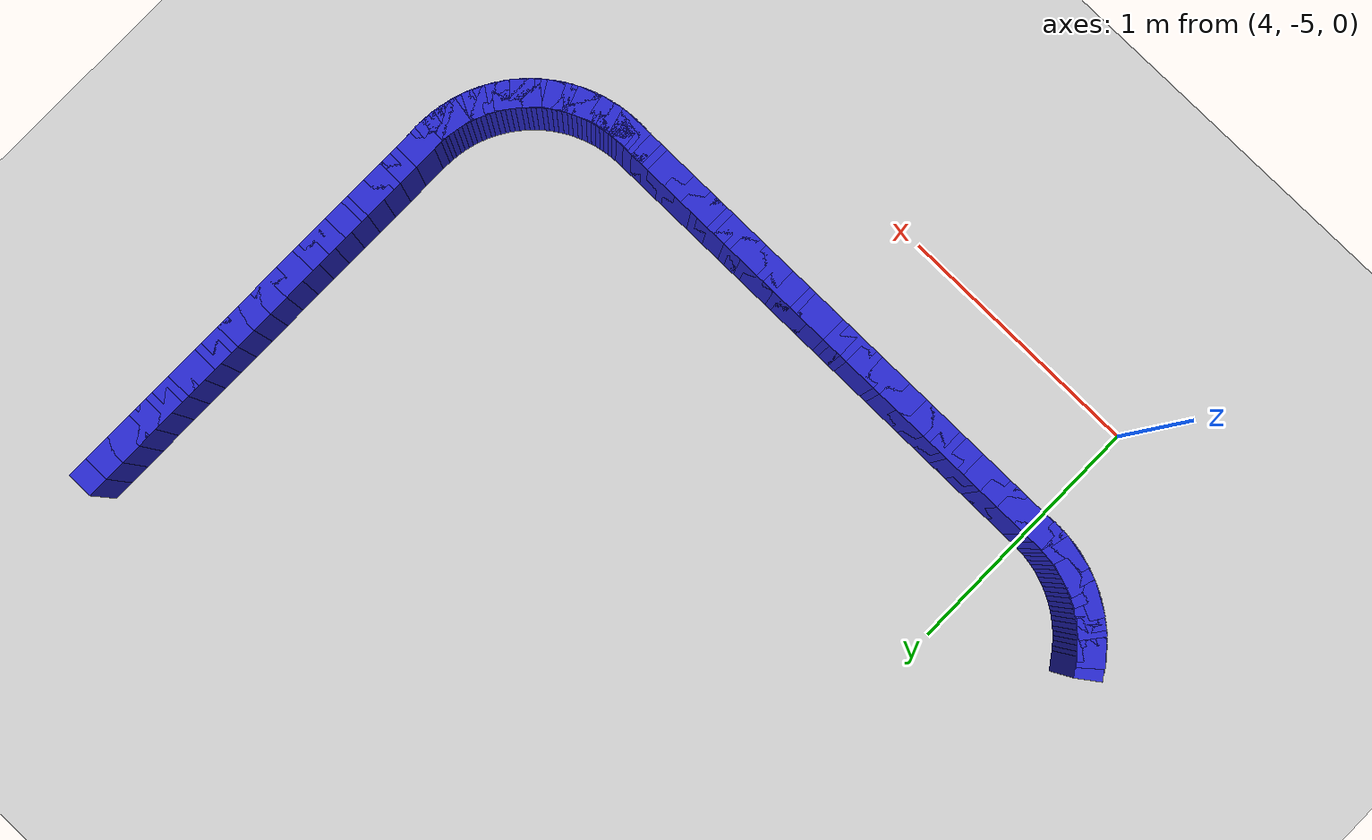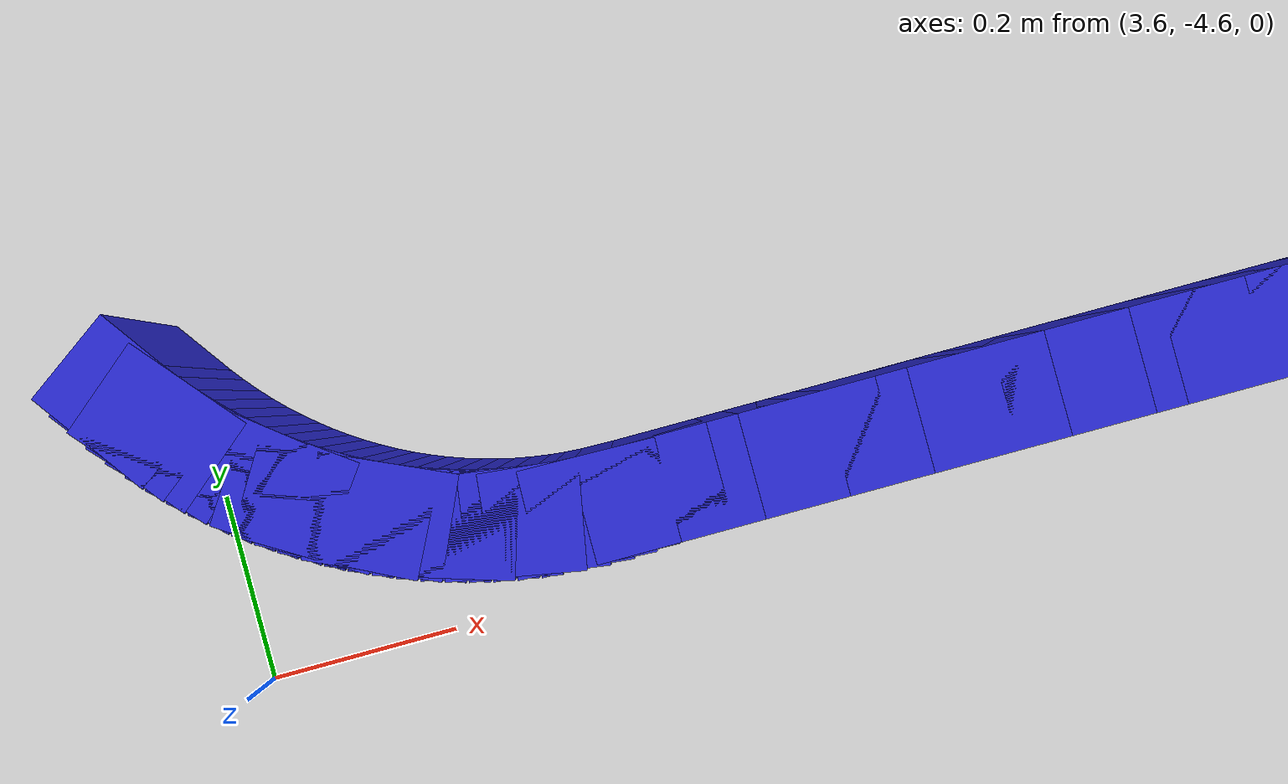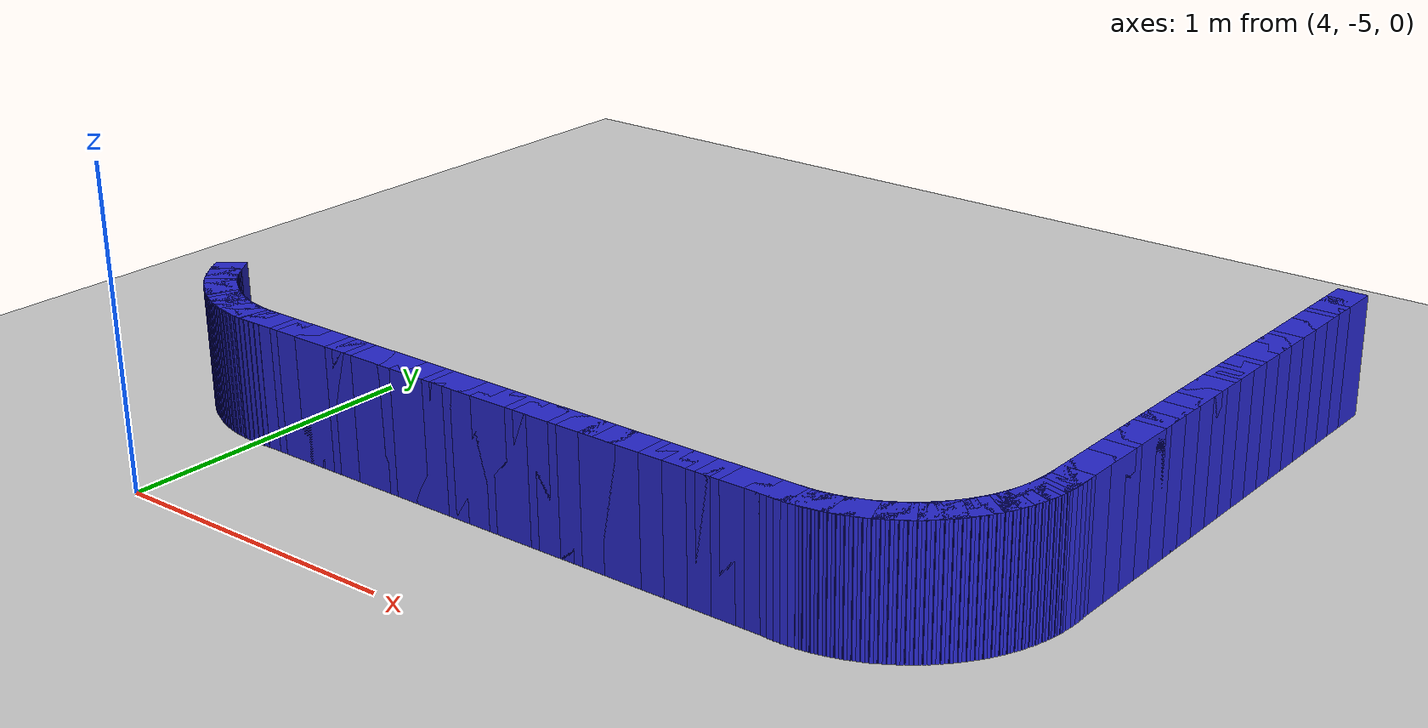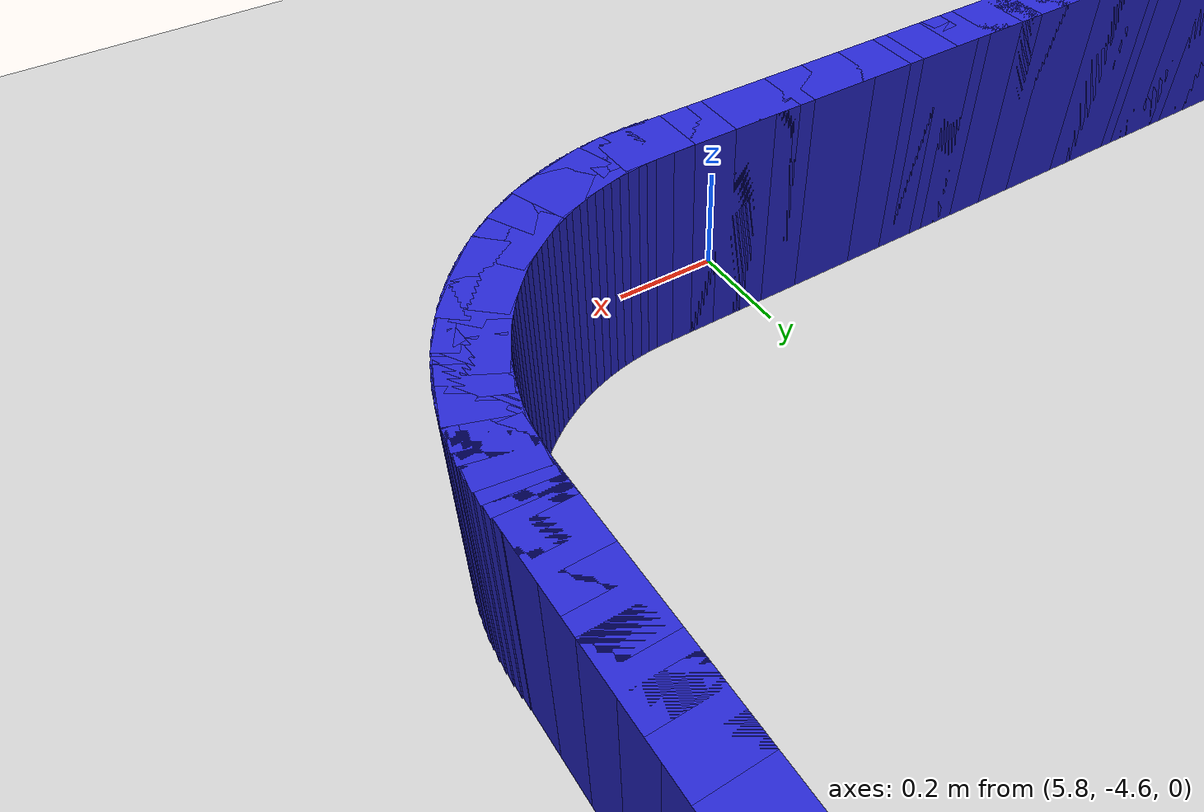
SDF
<sdf version="1.6">
 <world name="new_race_track">
  <include><uri>model://ground_plane</uri></include>
  <include><uri>model://sun</uri></include>
  <model name="iw_308">
   <static>true</static>
   <pose>3.5946 -4.2920 0.200 0 0 -0.9465</pose>
   <link name="l">
    <collision name="c"><geometry><box><size>0.1305 0.1 0.4</size></box></geometry></collision>
    <visual name="v">
     <geometry><box><size>0.1305 0.1 0.4</size></box></geometry>
     <material><ambient>0.15 0.15 0.8 1</ambient><diffuse>0.15 0.15 0.8 1</diffuse></material>
    </visual>
   </link>
  </model>
  <model name="iw_309">
   <static>true</static>
   <pose>3.6067 -4.3081 0.200 0 0 -0.9062</pose>
   <link name="l">
    <collision name="c"><geometry><box><size>0.1305 0.1 0.4</size></box></geometry></collision>
    <visual name="v">
     <geometry><box><size>0.1305 0.1 0.4</size></box></geometry>
     <material><ambient>0.15 0.15 0.8 1</ambient><diffuse>0.15 0.15 0.8 1</diffuse></material>
    </visual>
   </link>
  </model>
  <model name="iw_310">
   <static>true</static>
   <pose>3.6195 -4.3237 0.200 0 0 -0.8660</pose>
   <link name="l">
    <collision name="c"><geometry><box><size>0.1305 0.1 0.4</size></box></geometry></collision>
    <visual name="v">
     <geometry><box><size>0.1305 0.1 0.4</size></box></geometry>
     <material><ambient>0.15 0.15 0.8 1</ambient><diffuse>0.15 0.15 0.8 1</diffuse></material>
    </visual>
   </link>
  </model>
  <model name="iw_311">
   <static>true</static>
   <pose>3.6328 -4.3388 0.200 0 0 -0.8257</pose>
   <link name="l">
    <collision name="c"><geometry><box><size>0.1305 0.1 0.4</size></box></geometry></collision>
    <visual name="v">
     <geometry><box><size>0.1305 0.1 0.4</size></box></geometry>
     <material><ambient>0.15 0.15 0.8 1</ambient><diffuse>0.15 0.15 0.8 1</diffuse></material>
    </visual>
   </link>
  </model>
  <model name="iw_312">
   <static>true</static>
   <pose>3.6467 -4.3533 0.200 0 0 -0.7854</pose>
   <link name="l">
    <collision name="c"><geometry><box><size>0.1305 0.1 0.4</size></box></geometry></collision>
    <visual name="v">
     <geometry><box><size>0.1305 0.1 0.4</size></box></geometry>
     <material><ambient>0.15 0.15 0.8 1</ambient><diffuse>0.15 0.15 0.8 1</diffuse></material>
    </visual>
   </link>
  </model>
  <model name="iw_313">
   <static>true</static>
   <pose>3.6612 -4.3672 0.200 0 0 -0.7451</pose>
   <link name="l">
    <collision name="c"><geometry><box><size>0.1305 0.1 0.4</size></box></geometry></collision>
    <visual name="v">
     <geometry><box><size>0.1305 0.1 0.4</size></box></geometry>
     <material><ambient>0.15 0.15 0.8 1</ambient><diffuse>0.15 0.15 0.8 1</diffuse></material>
    </visual>
   </link>
  </model>
  <model name="iw_314">
   <static>true</static>
   <pose>3.6763 -4.3805 0.200 0 0 -0.7048</pose>
   <link name="l">
    <collision name="c"><geometry><box><size>0.1305 0.1 0.4</size></box></geometry></collision>
    <visual name="v">
     <geometry><box><size>0.1305 0.1 0.4</size></box></geometry>
     <material><ambient>0.15 0.15 0.8 1</ambient><diffuse>0.15 0.15 0.8 1</diffuse></material>
    </visual>
   </link>
  </model>
  <model name="iw_315">
   <static>true</static>
   <pose>3.6919 -4.3933 0.200 0 0 -0.6646</pose>
   <link name="l">
    <collision name="c"><geometry><box><size>0.1305 0.1 0.4</size></box></geometry></collision>
    <visual name="v">
     <geometry><box><size>0.1305 0.1 0.4</size></box></geometry>
     <material><ambient>0.15 0.15 0.8 1</ambient><diffuse>0.15 0.15 0.8 1</diffuse></material>
    </visual>
   </link>
  </model>
  <model name="iw_316">
   <static>true</static>
   <pose>3.7080 -4.4054 0.200 0 0 -0.6243</pose>
   <link name="l">
    <collision name="c"><geometry><box><size>0.1305 0.1 0.4</size></box></geometry></collision>
    <visual name="v">
     <geometry><box><size>0.1305 0.1 0.4</size></box></geometry>
     <material><ambient>0.15 0.15 0.8 1</ambient><diffuse>0.15 0.15 0.8 1</diffuse></material>
    </visual>
   </link>
  </model>
  <model name="iw_317">
   <static>true</static>
   <pose>3.7245 -4.4168 0.200 0 0 -0.5840</pose>
   <link name="l">
    <collision name="c"><geometry><box><size>0.1305 0.1 0.4</size></box></geometry></collision>
    <visual name="v">
     <geometry><box><size>0.1305 0.1 0.4</size></box></geometry>
     <material><ambient>0.15 0.15 0.8 1</ambient><diffuse>0.15 0.15 0.8 1</diffuse></material>
    </visual>
   </link>
  </model>
  <model name="iw_318">
   <static>true</static>
   <pose>3.7415 -4.4275 0.200 0 0 -0.5437</pose>
   <link name="l">
    <collision name="c"><geometry><box><size>0.1305 0.1 0.4</size></box></geometry></collision>
    <visual name="v">
     <geometry><box><size>0.1305 0.1 0.4</size></box></geometry>
     <material><ambient>0.15 0.15 0.8 1</ambient><diffuse>0.15 0.15 0.8 1</diffuse></material>
    </visual>
   </link>
  </model>
  <model name="iw_319">
   <static>true</static>
   <pose>3.7590 -4.4376 0.200 0 0 -0.5035</pose>
   <link name="l">
    <collision name="c"><geometry><box><size>0.1305 0.1 0.4</size></box></geometry></collision>
    <visual name="v">
     <geometry><box><size>0.1305 0.1 0.4</size></box></geometry>
     <material><ambient>0.15 0.15 0.8 1</ambient><diffuse>0.15 0.15 0.8 1</diffuse></material>
    </visual>
   </link>
  </model>
  <model name="iw_320">
   <static>true</static>
   <pose>3.7768 -4.4470 0.200 0 0 -0.4632</pose>
   <link name="l">
    <collision name="c"><geometry><box><size>0.1305 0.1 0.4</size></box></geometry></collision>
    <visual name="v">
     <geometry><box><size>0.1305 0.1 0.4</size></box></geometry>
     <material><ambient>0.15 0.15 0.8 1</ambient><diffuse>0.15 0.15 0.8 1</diffuse></material>
    </visual>
   </link>
  </model>
  <model name="iw_321">
   <static>true</static>
   <pose>3.7950 -4.4556 0.200 0 0 -0.4229</pose>
   <link name="l">
    <collision name="c"><geometry><box><size>0.1305 0.1 0.4</size></box></geometry></collision>
    <visual name="v">
     <geometry><box><size>0.1305 0.1 0.4</size></box></geometry>
     <material><ambient>0.15 0.15 0.8 1</ambient><diffuse>0.15 0.15 0.8 1</diffuse></material>
    </visual>
   </link>
  </model>
  <model name="iw_322">
   <static>true</static>
   <pose>3.8135 -4.4635 0.200 0 0 -0.3826</pose>
   <link name="l">
    <collision name="c"><geometry><box><size>0.1305 0.1 0.4</size></box></geometry></collision>
    <visual name="v">
     <geometry><box><size>0.1305 0.1 0.4</size></box></geometry>
     <material><ambient>0.15 0.15 0.8 1</ambient><diffuse>0.15 0.15 0.8 1</diffuse></material>
    </visual>
   </link>
  </model>
  <model name="iw_323">
   <static>true</static>
   <pose>3.8323 -4.4706 0.200 0 0 -0.3424</pose>
   <link name="l">
    <collision name="c"><geometry><box><size>0.1305 0.1 0.4</size></box></geometry></collision>
    <visual name="v">
     <geometry><box><size>0.1305 0.1 0.4</size></box></geometry>
     <material><ambient>0.15 0.15 0.8 1</ambient><diffuse>0.15 0.15 0.8 1</diffuse></material>
    </visual>
   </link>
  </model>
  <model name="iw_324">
   <static>true</static>
   <pose>3.8514 -4.4770 0.200 0 0 -0.3021</pose>
   <link name="l">
    <collision name="c"><geometry><box><size>0.1305 0.1 0.4</size></box></geometry></collision>
    <visual name="v">
     <geometry><box><size>0.1305 0.1 0.4</size></box></geometry>
     <material><ambient>0.15 0.15 0.8 1</ambient><diffuse>0.15 0.15 0.8 1</diffuse></material>
    </visual>
   </link>
  </model>
  <model name="iw_325">
   <static>true</static>
   <pose>3.8707 -4.4826 0.200 0 0 -0.2618</pose>
   <link name="l">
    <collision name="c"><geometry><box><size>0.1305 0.1 0.4</size></box></geometry></collision>
    <visual name="v">
     <geometry><box><size>0.1305 0.1 0.4</size></box></geometry>
     <material><ambient>0.15 0.15 0.8 1</ambient><diffuse>0.15 0.15 0.8 1</diffuse></material>
    </visual>
   </link>
  </model>
  <model name="iw_326">
   <static>true</static>
   <pose>3.8902 -4.4874 0.200 0 0 -0.2215</pose>
   <link name="l">
    <collision name="c"><geometry><box><size>0.1305 0.1 0.4</size></box></geometry></collision>
    <visual name="v">
     <geometry><box><size>0.1305 0.1 0.4</size></box></geometry>
     <material><ambient>0.15 0.15 0.8 1</ambient><diffuse>0.15 0.15 0.8 1</diffuse></material>
    </visual>
   </link>
  </model>
  <model name="iw_327">
   <static>true</static>
   <pose>3.9099 -4.4914 0.200 0 0 -0.1812</pose>
   <link name="l">
    <collision name="c"><geometry><box><size>0.1305 0.1 0.4</size></box></geometry></collision>
    <visual name="v">
     <geometry><box><size>0.1305 0.1 0.4</size></box></geometry>
     <material><ambient>0.15 0.15 0.8 1</ambient><diffuse>0.15 0.15 0.8 1</diffuse></material>
    </visual>
   </link>
  </model>
  <model name="iw_328">
   <static>true</static>
   <pose>3.9298 -4.4946 0.200 0 0 -0.1410</pose>
   <link name="l">
    <collision name="c"><geometry><box><size>0.1305 0.1 0.4</size></box></geometry></collision>
    <visual name="v">
     <geometry><box><size>0.1305 0.1 0.4</size></box></geometry>
     <material><ambient>0.15 0.15 0.8 1</ambient><diffuse>0.15 0.15 0.8 1</diffuse></material>
    </visual>
   </link>
  </model>
  <model name="iw_329">
   <static>true</static>
   <pose>3.9498 -4.4971 0.200 0 0 -0.1007</pose>
   <link name="l">
    <collision name="c"><geometry><box><size>0.1305 0.1 0.4</size></box></geometry></collision>
    <visual name="v">
     <geometry><box><size>0.1305 0.1 0.4</size></box></geometry>
     <material><ambient>0.15 0.15 0.8 1</ambient><diffuse>0.15 0.15 0.8 1</diffuse></material>
    </visual>
   </link>
  </model>
  <model name="iw_330">
   <static>true</static>
   <pose>3.9698 -4.4987 0.200 0 0 -0.0604</pose>
   <link name="l">
    <collision name="c"><geometry><box><size>0.1305 0.1 0.4</size></box></geometry></collision>
    <visual name="v">
     <geometry><box><size>0.1305 0.1 0.4</size></box></geometry>
     <material><ambient>0.15 0.15 0.8 1</ambient><diffuse>0.15 0.15 0.8 1</diffuse></material>
    </visual>
   </link>
  </model>
  <model name="iw_331">
   <static>true</static>
   <pose>3.9899 -4.4995 0.200 0 0 -0.0201</pose>
   <link name="l">
    <collision name="c"><geometry><box><size>0.1305 0.1 0.4</size></box></geometry></collision>
    <visual name="v">
     <geometry><box><size>0.1305 0.1 0.4</size></box></geometry>
     <material><ambient>0.15 0.15 0.8 1</ambient><diffuse>0.15 0.15 0.8 1</diffuse></material>
    </visual>
   </link>
  </model>
  <model name="iw_332">
   <static>true</static>
   <pose>4.0400 -4.5000 0.200 0 0 0.0000</pose>
   <link name="l">
    <collision name="c"><geometry><box><size>0.1300 0.1 0.4</size></box></geometry></collision>
    <visual name="v">
     <geometry><box><size>0.1300 0.1 0.4</size></box></geometry>
     <material><ambient>0.15 0.15 0.8 1</ambient><diffuse>0.15 0.15 0.8 1</diffuse></material>
    </visual>
   </link>
  </model>
  <model name="iw_333">
   <static>true</static>
   <pose>4.1200 -4.5000 0.200 0 0 0.0000</pose>
   <link name="l">
    <collision name="c"><geometry><box><size>0.1300 0.1 0.4</size></box></geometry></collision>
    <visual name="v">
     <geometry><box><size>0.1300 0.1 0.4</size></box></geometry>
     <material><ambient>0.15 0.15 0.8 1</ambient><diffuse>0.15 0.15 0.8 1</diffuse></material>
    </visual>
   </link>
  </model>
  <model name="iw_334">
   <static>true</static>
   <pose>4.2000 -4.5000 0.200 0 0 0.0000</pose>
   <link name="l">
    <collision name="c"><geometry><box><size>0.1300 0.1 0.4</size></box></geometry></collision>
    <visual name="v">
     <geometry><box><size>0.1300 0.1 0.4</size></box></geometry>
     <material><ambient>0.15 0.15 0.8 1</ambient><diffuse>0.15 0.15 0.8 1</diffuse></material>
    </visual>
   </link>
  </model>
  <model name="iw_335">
   <static>true</static>
   <pose>4.2800 -4.5000 0.200 0 0 0.0000</pose>
   <link name="l">
    <collision name="c"><geometry><box><size>0.1300 0.1 0.4</size></box></geometry></collision>
    <visual name="v">
     <geometry><box><size>0.1300 0.1 0.4</size></box></geometry>
     <material><ambient>0.15 0.15 0.8 1</ambient><diffuse>0.15 0.15 0.8 1</diffuse></material>
    </visual>
   </link>
  </model>
  <model name="iw_336">
   <static>true</static>
   <pose>4.3600 -4.5000 0.200 0 0 0.0000</pose>
   <link name="l">
    <collision name="c"><geometry><box><size>0.1300 0.1 0.4</size></box></geometry></collision>
    <visual name="v">
     <geometry><box><size>0.1300 0.1 0.4</size></box></geometry>
     <material><ambient>0.15 0.15 0.8 1</ambient><diffuse>0.15 0.15 0.8 1</diffuse></material>
    </visual>
   </link>
  </model>
  <model name="iw_337">
   <static>true</static>
   <pose>4.4400 -4.5000 0.200 0 0 0.0000</pose>
   <link name="l">
    <collision name="c"><geometry><box><size>0.1300 0.1 0.4</size></box></geometry></collision>
    <visual name="v">
     <geometry><box><size>0.1300 0.1 0.4</size></box></geometry>
     <material><ambient>0.15 0.15 0.8 1</ambient><diffuse>0.15 0.15 0.8 1</diffuse></material>
    </visual>
   </link>
  </model>
  <model name="iw_338">
   <static>true</static>
   <pose>4.5200 -4.5000 0.200 0 0 0.0000</pose>
   <link name="l">
    <collision name="c"><geometry><box><size>0.1300 0.1 0.4</size></box></geometry></collision>
    <visual name="v">
     <geometry><box><size>0.1300 0.1 0.4</size></box></geometry>
     <material><ambient>0.15 0.15 0.8 1</ambient><diffuse>0.15 0.15 0.8 1</diffuse></material>
    </visual>
   </link>
  </model>
  <model name="iw_339">
   <static>true</static>
   <pose>4.6000 -4.5000 0.200 0 0 0.0000</pose>
   <link name="l">
    <collision name="c"><geometry><box><size>0.1300 0.1 0.4</size></box></geometry></collision>
    <visual name="v">
     <geometry><box><size>0.1300 0.1 0.4</size></box></geometry>
     <material><ambient>0.15 0.15 0.8 1</ambient><diffuse>0.15 0.15 0.8 1</diffuse></material>
    </visual>
   </link>
  </model>
  <model name="iw_340">
   <static>true</static>
   <pose>4.6800 -4.5000 0.200 0 0 0.0000</pose>
   <link name="l">
    <collision name="c"><geometry><box><size>0.1300 0.1 0.4</size></box></geometry></collision>
    <visual name="v">
     <geometry><box><size>0.1300 0.1 0.4</size></box></geometry>
     <material><ambient>0.15 0.15 0.8 1</ambient><diffuse>0.15 0.15 0.8 1</diffuse></material>
    </visual>
   </link>
  </model>
  <model name="iw_341">
   <static>true</static>
   <pose>4.7600 -4.5000 0.200 0 0 0.0000</pose>
   <link name="l">
    <collision name="c"><geometry><box><size>0.1300 0.1 0.4</size></box></geometry></collision>
    <visual name="v">
     <geometry><box><size>0.1300 0.1 0.4</size></box></geometry>
     <material><ambient>0.15 0.15 0.8 1</ambient><diffuse>0.15 0.15 0.8 1</diffuse></material>
    </visual>
   </link>
  </model>
  <model name="iw_342">
   <static>true</static>
   <pose>4.8400 -4.5000 0.200 0 0 0.0000</pose>
   <link name="l">
    <collision name="c"><geometry><box><size>0.1300 0.1 0.4</size></box></geometry></collision>
    <visual name="v">
     <geometry><box><size>0.1300 0.1 0.4</size></box></geometry>
     <material><ambient>0.15 0.15 0.8 1</ambient><diffuse>0.15 0.15 0.8 1</diffuse></material>
    </visual>
   </link>
  </model>
  <model name="iw_343">
   <static>true</static>
   <pose>4.9200 -4.5000 0.200 0 0 0.0000</pose>
   <link name="l">
    <collision name="c"><geometry><box><size>0.1300 0.1 0.4</size></box></geometry></collision>
    <visual name="v">
     <geometry><box><size>0.1300 0.1 0.4</size></box></geometry>
     <material><ambient>0.15 0.15 0.8 1</ambient><diffuse>0.15 0.15 0.8 1</diffuse></material>
    </visual>
   </link>
  </model>
  <model name="iw_344">
   <static>true</static>
   <pose>5.0000 -4.5000 0.200 0 0 0.0000</pose>
   <link name="l">
    <collision name="c"><geometry><box><size>0.1300 0.1 0.4</size></box></geometry></collision>
    <visual name="v">
     <geometry><box><size>0.1300 0.1 0.4</size></box></geometry>
     <material><ambient>0.15 0.15 0.8 1</ambient><diffuse>0.15 0.15 0.8 1</diffuse></material>
    </visual>
   </link>
  </model>
  <model name="iw_345">
   <static>true</static>
   <pose>5.0800 -4.5000 0.200 0 0 0.0000</pose>
   <link name="l">
    <collision name="c"><geometry><box><size>0.1300 0.1 0.4</size></box></geometry></collision>
    <visual name="v">
     <geometry><box><size>0.1300 0.1 0.4</size></box></geometry>
     <material><ambient>0.15 0.15 0.8 1</ambient><diffuse>0.15 0.15 0.8 1</diffuse></material>
    </visual>
   </link>
  </model>
  <model name="iw_346">
   <static>true</static>
   <pose>5.1600 -4.5000 0.200 0 0 0.0000</pose>
   <link name="l">
    <collision name="c"><geometry><box><size>0.1300 0.1 0.4</size></box></geometry></collision>
    <visual name="v">
     <geometry><box><size>0.1300 0.1 0.4</size></box></geometry>
     <material><ambient>0.15 0.15 0.8 1</ambient><diffuse>0.15 0.15 0.8 1</diffuse></material>
    </visual>
   </link>
  </model>
  <model name="iw_347">
   <static>true</static>
   <pose>5.2400 -4.5000 0.200 0 0 0.0000</pose>
   <link name="l">
    <collision name="c"><geometry><box><size>0.1300 0.1 0.4</size></box></geometry></collision>
    <visual name="v">
     <geometry><box><size>0.1300 0.1 0.4</size></box></geometry>
     <material><ambient>0.15 0.15 0.8 1</ambient><diffuse>0.15 0.15 0.8 1</diffuse></material>
    </visual>
   </link>
  </model>
  <model name="iw_348">
   <static>true</static>
   <pose>5.3200 -4.5000 0.200 0 0 0.0000</pose>
   <link name="l">
    <collision name="c"><geometry><box><size>0.1300 0.1 0.4</size></box></geometry></collision>
    <visual name="v">
     <geometry><box><size>0.1300 0.1 0.4</size></box></geometry>
     <material><ambient>0.15 0.15 0.8 1</ambient><diffuse>0.15 0.15 0.8 1</diffuse></material>
    </visual>
   </link>
  </model>
  <model name="iw_349">
   <static>true</static>
   <pose>5.4000 -4.5000 0.200 0 0 0.0000</pose>
   <link name="l">
    <collision name="c"><geometry><box><size>0.1300 0.1 0.4</size></box></geometry></collision>
    <visual name="v">
     <geometry><box><size>0.1300 0.1 0.4</size></box></geometry>
     <material><ambient>0.15 0.15 0.8 1</ambient><diffuse>0.15 0.15 0.8 1</diffuse></material>
    </visual>
   </link>
  </model>
  <model name="iw_350">
   <static>true</static>
   <pose>5.4800 -4.5000 0.200 0 0 0.0000</pose>
   <link name="l">
    <collision name="c"><geometry><box><size>0.1300 0.1 0.4</size></box></geometry></collision>
    <visual name="v">
     <geometry><box><size>0.1300 0.1 0.4</size></box></geometry>
     <material><ambient>0.15 0.15 0.8 1</ambient><diffuse>0.15 0.15 0.8 1</diffuse></material>
    </visual>
   </link>
  </model>
  <model name="iw_351">
   <static>true</static>
   <pose>5.5600 -4.5000 0.200 0 0 0.0000</pose>
   <link name="l">
    <collision name="c"><geometry><box><size>0.1300 0.1 0.4</size></box></geometry></collision>
    <visual name="v">
     <geometry><box><size>0.1300 0.1 0.4</size></box></geometry>
     <material><ambient>0.15 0.15 0.8 1</ambient><diffuse>0.15 0.15 0.8 1</diffuse></material>
    </visual>
   </link>
  </model>
  <model name="iw_352">
   <static>true</static>
   <pose>5.6400 -4.5000 0.200 0 0 0.0000</pose>
   <link name="l">
    <collision name="c"><geometry><box><size>0.1300 0.1 0.4</size></box></geometry></collision>
    <visual name="v">
     <geometry><box><size>0.1300 0.1 0.4</size></box></geometry>
     <material><ambient>0.15 0.15 0.8 1</ambient><diffuse>0.15 0.15 0.8 1</diffuse></material>
    </visual>
   </link>
  </model>
  <model name="iw_353">
   <static>true</static>
   <pose>5.7200 -4.5000 0.200 0 0 0.0000</pose>
   <link name="l">
    <collision name="c"><geometry><box><size>0.1300 0.1 0.4</size></box></geometry></collision>
    <visual name="v">
     <geometry><box><size>0.1300 0.1 0.4</size></box></geometry>
     <material><ambient>0.15 0.15 0.8 1</ambient><diffuse>0.15 0.15 0.8 1</diffuse></material>
    </visual>
   </link>
  </model>
  <model name="iw_354">
   <static>true</static>
   <pose>5.8000 -4.5000 0.200 0 0 0.0000</pose>
   <link name="l">
    <collision name="c"><geometry><box><size>0.1300 0.1 0.4</size></box></geometry></collision>
    <visual name="v">
     <geometry><box><size>0.1300 0.1 0.4</size></box></geometry>
     <material><ambient>0.15 0.15 0.8 1</ambient><diffuse>0.15 0.15 0.8 1</diffuse></material>
    </visual>
   </link>
  </model>
  <model name="iw_355">
   <static>true</static>
   <pose>5.8800 -4.5000 0.200 0 0 0.0000</pose>
   <link name="l">
    <collision name="c"><geometry><box><size>0.1300 0.1 0.4</size></box></geometry></collision>
    <visual name="v">
     <geometry><box><size>0.1300 0.1 0.4</size></box></geometry>
     <material><ambient>0.15 0.15 0.8 1</ambient><diffuse>0.15 0.15 0.8 1</diffuse></material>
    </visual>
   </link>
  </model>
  <model name="iw_356">
   <static>true</static>
   <pose>5.9600 -4.5000 0.200 0 0 0.0000</pose>
   <link name="l">
    <collision name="c"><geometry><box><size>0.1300 0.1 0.4</size></box></geometry></collision>
    <visual name="v">
     <geometry><box><size>0.1300 0.1 0.4</size></box></geometry>
     <material><ambient>0.15 0.15 0.8 1</ambient><diffuse>0.15 0.15 0.8 1</diffuse></material>
    </visual>
   </link>
  </model>
  <model name="iw_357">
   <static>true</static>
   <pose>6.0101 -4.4995 0.200 0 0 0.0201</pose>
   <link name="l">
    <collision name="c"><geometry><box><size>0.1305 0.1 0.4</size></box></geometry></collision>
    <visual name="v">
     <geometry><box><size>0.1305 0.1 0.4</size></box></geometry>
     <material><ambient>0.15 0.15 0.8 1</ambient><diffuse>0.15 0.15 0.8 1</diffuse></material>
    </visual>
   </link>
  </model>
  <model name="iw_358">
   <static>true</static>
   <pose>6.0302 -4.4987 0.200 0 0 0.0604</pose>
   <link name="l">
    <collision name="c"><geometry><box><size>0.1305 0.1 0.4</size></box></geometry></collision>
    <visual name="v">
     <geometry><box><size>0.1305 0.1 0.4</size></box></geometry>
     <material><ambient>0.15 0.15 0.8 1</ambient><diffuse>0.15 0.15 0.8 1</diffuse></material>
    </visual>
   </link>
  </model>
  <model name="iw_359">
   <static>true</static>
   <pose>6.0502 -4.4971 0.200 0 0 0.1007</pose>
   <link name="l">
    <collision name="c"><geometry><box><size>0.1305 0.1 0.4</size></box></geometry></collision>
    <visual name="v">
     <geometry><box><size>0.1305 0.1 0.4</size></box></geometry>
     <material><ambient>0.15 0.15 0.8 1</ambient><diffuse>0.15 0.15 0.8 1</diffuse></material>
    </visual>
   </link>
  </model>
  <model name="iw_360">
   <static>true</static>
   <pose>6.0702 -4.4946 0.200 0 0 0.1410</pose>
   <link name="l">
    <collision name="c"><geometry><box><size>0.1305 0.1 0.4</size></box></geometry></collision>
    <visual name="v">
     <geometry><box><size>0.1305 0.1 0.4</size></box></geometry>
     <material><ambient>0.15 0.15 0.8 1</ambient><diffuse>0.15 0.15 0.8 1</diffuse></material>
    </visual>
   </link>
  </model>
  <model name="iw_361">
   <static>true</static>
   <pose>6.0901 -4.4914 0.200 0 0 0.1812</pose>
   <link name="l">
    <collision name="c"><geometry><box><size>0.1305 0.1 0.4</size></box></geometry></collision>
    <visual name="v">
     <geometry><box><size>0.1305 0.1 0.4</size></box></geometry>
     <material><ambient>0.15 0.15 0.8 1</ambient><diffuse>0.15 0.15 0.8 1</diffuse></material>
    </visual>
   </link>
  </model>
  <model name="iw_362">
   <static>true</static>
   <pose>6.1098 -4.4874 0.200 0 0 0.2215</pose>
   <link name="l">
    <collision name="c"><geometry><box><size>0.1305 0.1 0.4</size></box></geometry></collision>
    <visual name="v">
     <geometry><box><size>0.1305 0.1 0.4</size></box></geometry>
     <material><ambient>0.15 0.15 0.8 1</ambient><diffuse>0.15 0.15 0.8 1</diffuse></material>
    </visual>
   </link>
  </model>
  <model name="iw_363">
   <static>true</static>
   <pose>6.1293 -4.4826 0.200 0 0 0.2618</pose>
   <link name="l">
    <collision name="c"><geometry><box><size>0.1305 0.1 0.4</size></box></geometry></collision>
    <visual name="v">
     <geometry><box><size>0.1305 0.1 0.4</size></box></geometry>
     <material><ambient>0.15 0.15 0.8 1</ambient><diffuse>0.15 0.15 0.8 1</diffuse></material>
    </visual>
   </link>
  </model>
  <model name="iw_364">
   <static>true</static>
   <pose>6.1486 -4.4770 0.200 0 0 0.3021</pose>
   <link name="l">
    <collision name="c"><geometry><box><size>0.1305 0.1 0.4</size></box></geometry></collision>
    <visual name="v">
     <geometry><box><size>0.1305 0.1 0.4</size></box></geometry>
     <material><ambient>0.15 0.15 0.8 1</ambient><diffuse>0.15 0.15 0.8 1</diffuse></material>
    </visual>
   </link>
  </model>
  <model name="iw_365">
   <static>true</static>
   <pose>6.1677 -4.4706 0.200 0 0 0.3424</pose>
   <link name="l">
    <collision name="c"><geometry><box><size>0.1305 0.1 0.4</size></box></geometry></collision>
    <visual name="v">
     <geometry><box><size>0.1305 0.1 0.4</size></box></geometry>
     <material><ambient>0.15 0.15 0.8 1</ambient><diffuse>0.15 0.15 0.8 1</diffuse></material>
    </visual>
   </link>
  </model>
  <model name="iw_366">
   <static>true</static>
   <pose>6.1865 -4.4635 0.200 0 0 0.3826</pose>
   <link name="l">
    <collision name="c"><geometry><box><size>0.1305 0.1 0.4</size></box></geometry></collision>
    <visual name="v">
     <geometry><box><size>0.1305 0.1 0.4</size></box></geometry>
     <material><ambient>0.15 0.15 0.8 1</ambient><diffuse>0.15 0.15 0.8 1</diffuse></material>
    </visual>
   </link>
  </model>
  <model name="iw_367">
   <static>true</static>
   <pose>6.2050 -4.4556 0.200 0 0 0.4229</pose>
   <link name="l">
    <collision name="c"><geometry><box><size>0.1305 0.1 0.4</size></box></geometry></collision>
    <visual name="v">
     <geometry><box><size>0.1305 0.1 0.4</size></box></geometry>
     <material><ambient>0.15 0.15 0.8 1</ambient><diffuse>0.15 0.15 0.8 1</diffuse></material>
    </visual>
   </link>
  </model>
  <model name="iw_368">
   <static>true</static>
   <pose>6.2232 -4.4470 0.200 0 0 0.4632</pose>
   <link name="l">
    <collision name="c"><geometry><box><size>0.1305 0.1 0.4</size></box></geometry></collision>
    <visual name="v">
     <geometry><box><size>0.1305 0.1 0.4</size></box></geometry>
     <material><ambient>0.15 0.15 0.8 1</ambient><diffuse>0.15 0.15 0.8 1</diffuse></material>
    </visual>
   </link>
  </model>
  <model name="iw_369">
   <static>true</static>
   <pose>6.2410 -4.4376 0.200 0 0 0.5035</pose>
   <link name="l">
    <collision name="c"><geometry><box><size>0.1305 0.1 0.4</size></box></geometry></collision>
    <visual name="v">
     <geometry><box><size>0.1305 0.1 0.4</size></box></geometry>
     <material><ambient>0.15 0.15 0.8 1</ambient><diffuse>0.15 0.15 0.8 1</diffuse></material>
    </visual>
   </link>
  </model>
  <model name="iw_370">
   <static>true</static>
   <pose>6.2585 -4.4275 0.200 0 0 0.5437</pose>
   <link name="l">
    <collision name="c"><geometry><box><size>0.1305 0.1 0.4</size></box></geometry></collision>
    <visual name="v">
     <geometry><box><size>0.1305 0.1 0.4</size></box></geometry>
     <material><ambient>0.15 0.15 0.8 1</ambient><diffuse>0.15 0.15 0.8 1</diffuse></material>
    </visual>
   </link>
  </model>
  <model name="iw_371">
   <static>true</static>
   <pose>6.2755 -4.4168 0.200 0 0 0.5840</pose>
   <link name="l">
    <collision name="c"><geometry><box><size>0.1305 0.1 0.4</size></box></geometry></collision>
    <visual name="v">
     <geometry><box><size>0.1305 0.1 0.4</size></box></geometry>
     <material><ambient>0.15 0.15 0.8 1</ambient><diffuse>0.15 0.15 0.8 1</diffuse></material>
    </visual>
   </link>
  </model>
  <model name="iw_372">
   <static>true</static>
   <pose>6.2920 -4.4054 0.200 0 0 0.6243</pose>
   <link name="l">
    <collision name="c"><geometry><box><size>0.1305 0.1 0.4</size></box></geometry></collision>
    <visual name="v">
     <geometry><box><size>0.1305 0.1 0.4</size></box></geometry>
     <material><ambient>0.15 0.15 0.8 1</ambient><diffuse>0.15 0.15 0.8 1</diffuse></material>
    </visual>
   </link>
  </model>
  <model name="iw_373">
   <static>true</static>
   <pose>6.3081 -4.3933 0.200 0 0 0.6646</pose>
   <link name="l">
    <collision name="c"><geometry><box><size>0.1305 0.1 0.4</size></box></geometry></collision>
    <visual name="v">
     <geometry><box><size>0.1305 0.1 0.4</size></box></geometry>
     <material><ambient>0.15 0.15 0.8 1</ambient><diffuse>0.15 0.15 0.8 1</diffuse></material>
    </visual>
   </link>
  </model>
  <model name="iw_374">
   <static>true</static>
   <pose>6.3237 -4.3805 0.200 0 0 0.7048</pose>
   <link name="l">
    <collision name="c"><geometry><box><size>0.1305 0.1 0.4</size></box></geometry></collision>
    <visual name="v">
     <geometry><box><size>0.1305 0.1 0.4</size></box></geometry>
     <material><ambient>0.15 0.15 0.8 1</ambient><diffuse>0.15 0.15 0.8 1</diffuse></material>
    </visual>
   </link>
  </model>
  <model name="iw_375">
   <static>true</static>
   <pose>6.3388 -4.3672 0.200 0 0 0.7451</pose>
   <link name="l">
    <collision name="c"><geometry><box><size>0.1305 0.1 0.4</size></box></geometry></collision>
    <visual name="v">
     <geometry><box><size>0.1305 0.1 0.4</size></box></geometry>
     <material><ambient>0.15 0.15 0.8 1</ambient><diffuse>0.15 0.15 0.8 1</diffuse></material>
    </visual>
   </link>
  </model>
  <model name="iw_376">
   <static>true</static>
   <pose>6.3533 -4.3533 0.200 0 0 0.7854</pose>
   <link name="l">
    <collision name="c"><geometry><box><size>0.1305 0.1 0.4</size></box></geometry></collision>
    <visual name="v">
     <geometry><box><size>0.1305 0.1 0.4</size></box></geometry>
     <material><ambient>0.15 0.15 0.8 1</ambient><diffuse>0.15 0.15 0.8 1</diffuse></material>
    </visual>
   </link>
  </model>
  <model name="iw_377">
   <static>true</static>
   <pose>6.3672 -4.3388 0.200 0 0 0.8257</pose>
   <link name="l">
    <collision name="c"><geometry><box><size>0.1305 0.1 0.4</size></box></geometry></collision>
    <visual name="v">
     <geometry><box><size>0.1305 0.1 0.4</size></box></geometry>
     <material><ambient>0.15 0.15 0.8 1</ambient><diffuse>0.15 0.15 0.8 1</diffuse></material>
    </visual>
   </link>
  </model>
  <model name="iw_378">
   <static>true</static>
   <pose>6.3805 -4.3237 0.200 0 0 0.8660</pose>
   <link name="l">
    <collision name="c"><geometry><box><size>0.1305 0.1 0.4</size></box></geometry></collision>
    <visual name="v">
     <geometry><box><size>0.1305 0.1 0.4</size></box></geometry>
     <material><ambient>0.15 0.15 0.8 1</ambient><diffuse>0.15 0.15 0.8 1</diffuse></material>
    </visual>
   </link>
  </model>
  <model name="iw_379">
   <static>true</static>
   <pose>6.3933 -4.3081 0.200 0 0 0.9062</pose>
   <link name="l">
    <collision name="c"><geometry><box><size>0.1305 0.1 0.4</size></box></geometry></collision>
    <visual name="v">
     <geometry><box><size>0.1305 0.1 0.4</size></box></geometry>
     <material><ambient>0.15 0.15 0.8 1</ambient><diffuse>0.15 0.15 0.8 1</diffuse></material>
    </visual>
   </link>
  </model>
  <model name="iw_380">
   <static>true</static>
   <pose>6.4054 -4.2920 0.200 0 0 0.9465</pose>
   <link name="l">
    <collision name="c"><geometry><box><size>0.1305 0.1 0.4</size></box></geometry></collision>
    <visual name="v">
     <geometry><box><size>0.1305 0.1 0.4</size></box></geometry>
     <material><ambient>0.15 0.15 0.8 1</ambient><diffuse>0.15 0.15 0.8 1</diffuse></material>
    </visual>
   </link>
  </model>
  <model name="iw_381">
   <static>true</static>
   <pose>6.4168 -4.2755 0.200 0 0 0.9868</pose>
   <link name="l">
    <collision name="c"><geometry><box><size>0.1305 0.1 0.4</size></box></geometry></collision>
    <visual name="v">
     <geometry><box><size>0.1305 0.1 0.4</size></box></geometry>
     <material><ambient>0.15 0.15 0.8 1</ambient><diffuse>0.15 0.15 0.8 1</diffuse></material>
    </visual>
   </link>
  </model>
  <model name="iw_382">
   <static>true</static>
   <pose>6.4275 -4.2585 0.200 0 0 1.0271</pose>
   <link name="l">
    <collision name="c"><geometry><box><size>0.1305 0.1 0.4</size></box></geometry></collision>
    <visual name="v">
     <geometry><box><size>0.1305 0.1 0.4</size></box></geometry>
     <material><ambient>0.15 0.15 0.8 1</ambient><diffuse>0.15 0.15 0.8 1</diffuse></material>
    </visual>
   </link>
  </model>
  <model name="iw_383">
   <static>true</static>
   <pose>6.4376 -4.2410 0.200 0 0 1.0673</pose>
   <link name="l">
    <collision name="c"><geometry><box><size>0.1305 0.1 0.4</size></box></geometry></collision>
    <visual name="v">
     <geometry><box><size>0.1305 0.1 0.4</size></box></geometry>
     <material><ambient>0.15 0.15 0.8 1</ambient><diffuse>0.15 0.15 0.8 1</diffuse></material>
    </visual>
   </link>
  </model>
  <model name="iw_384">
   <static>true</static>
   <pose>6.4470 -4.2232 0.200 0 0 1.1076</pose>
   <link name="l">
    <collision name="c"><geometry><box><size>0.1305 0.1 0.4</size></box></geometry></collision>
    <visual name="v">
     <geometry><box><size>0.1305 0.1 0.4</size></box></geometry>
     <material><ambient>0.15 0.15 0.8 1</ambient><diffuse>0.15 0.15 0.8 1</diffuse></material>
    </visual>
   </link>
  </model>
  <model name="iw_385">
   <static>true</static>
   <pose>6.4556 -4.2050 0.200 0 0 1.1479</pose>
   <link name="l">
    <collision name="c"><geometry><box><size>0.1305 0.1 0.4</size></box></geometry></collision>
    <visual name="v">
     <geometry><box><size>0.1305 0.1 0.4</size></box></geometry>
     <material><ambient>0.15 0.15 0.8 1</ambient><diffuse>0.15 0.15 0.8 1</diffuse></material>
    </visual>
   </link>
  </model>
  <model name="iw_386">
   <static>true</static>
   <pose>6.4635 -4.1865 0.200 0 0 1.1882</pose>
   <link name="l">
    <collision name="c"><geometry><box><size>0.1305 0.1 0.4</size></box></geometry></collision>
    <visual name="v">
     <geometry><box><size>0.1305 0.1 0.4</size></box></geometry>
     <material><ambient>0.15 0.15 0.8 1</ambient><diffuse>0.15 0.15 0.8 1</diffuse></material>
    </visual>
   </link>
  </model>
  <model name="iw_387">
   <static>true</static>
   <pose>6.4706 -4.1677 0.200 0 0 1.2284</pose>
   <link name="l">
    <collision name="c"><geometry><box><size>0.1305 0.1 0.4</size></box></geometry></collision>
    <visual name="v">
     <geometry><box><size>0.1305 0.1 0.4</size></box></geometry>
     <material><ambient>0.15 0.15 0.8 1</ambient><diffuse>0.15 0.15 0.8 1</diffuse></material>
    </visual>
   </link>
  </model>
  <model name="iw_388">
   <static>true</static>
   <pose>6.4770 -4.1486 0.200 0 0 1.2687</pose>
   <link name="l">
    <collision name="c"><geometry><box><size>0.1305 0.1 0.4</size></box></geometry></collision>
    <visual name="v">
     <geometry><box><size>0.1305 0.1 0.4</size></box></geometry>
     <material><ambient>0.15 0.15 0.8 1</ambient><diffuse>0.15 0.15 0.8 1</diffuse></material>
    </visual>
   </link>
  </model>
  <model name="iw_389">
   <static>true</static>
   <pose>6.4826 -4.1293 0.200 0 0 1.3090</pose>
   <link name="l">
    <collision name="c"><geometry><box><size>0.1305 0.1 0.4</size></box></geometry></collision>
    <visual name="v">
     <geometry><box><size>0.1305 0.1 0.4</size></box></geometry>
     <material><ambient>0.15 0.15 0.8 1</ambient><diffuse>0.15 0.15 0.8 1</diffuse></material>
    </visual>
   </link>
  </model>
  <model name="iw_390">
   <static>true</static>
   <pose>6.4874 -4.1098 0.200 0 0 1.3493</pose>
   <link name="l">
    <collision name="c"><geometry><box><size>0.1305 0.1 0.4</size></box></geometry></collision>
    <visual name="v">
     <geometry><box><size>0.1305 0.1 0.4</size></box></geometry>
     <material><ambient>0.15 0.15 0.8 1</ambient><diffuse>0.15 0.15 0.8 1</diffuse></material>
    </visual>
   </link>
  </model>
  <model name="iw_391">
   <static>true</static>
   <pose>6.4914 -4.0901 0.200 0 0 1.3896</pose>
   <link name="l">
    <collision name="c"><geometry><box><size>0.1305 0.1 0.4</size></box></geometry></collision>
    <visual name="v">
     <geometry><box><size>0.1305 0.1 0.4</size></box></geometry>
     <material><ambient>0.15 0.15 0.8 1</ambient><diffuse>0.15 0.15 0.8 1</diffuse></material>
    </visual>
   </link>
  </model>
  <model name="iw_392">
   <static>true</static>
   <pose>6.4946 -4.0702 0.200 0 0 1.4298</pose>
   <link name="l">
    <collision name="c"><geometry><box><size>0.1305 0.1 0.4</size></box></geometry></collision>
    <visual name="v">
     <geometry><box><size>0.1305 0.1 0.4</size></box></geometry>
     <material><ambient>0.15 0.15 0.8 1</ambient><diffuse>0.15 0.15 0.8 1</diffuse></material>
    </visual>
   </link>
  </model>
  <model name="iw_393">
   <static>true</static>
   <pose>6.4971 -4.0502 0.200 0 0 1.4701</pose>
   <link name="l">
    <collision name="c"><geometry><box><size>0.1305 0.1 0.4</size></box></geometry></collision>
    <visual name="v">
     <geometry><box><size>0.1305 0.1 0.4</size></box></geometry>
     <material><ambient>0.15 0.15 0.8 1</ambient><diffuse>0.15 0.15 0.8 1</diffuse></material>
    </visual>
   </link>
  </model>
  <model name="iw_394">
   <static>true</static>
   <pose>6.4987 -4.0302 0.200 0 0 1.5104</pose>
   <link name="l">
    <collision name="c"><geometry><box><size>0.1305 0.1 0.4</size></box></geometry></collision>
    <visual name="v">
     <geometry><box><size>0.1305 0.1 0.4</size></box></geometry>
     <material><ambient>0.15 0.15 0.8 1</ambient><diffuse>0.15 0.15 0.8 1</diffuse></material>
    </visual>
   </link>
  </model>
  <model name="iw_395">
   <static>true</static>
   <pose>6.4995 -4.0101 0.200 0 0 1.5507</pose>
   <link name="l">
    <collision name="c"><geometry><box><size>0.1305 0.1 0.4</size></box></geometry></collision>
    <visual name="v">
     <geometry><box><size>0.1305 0.1 0.4</size></box></geometry>
     <material><ambient>0.15 0.15 0.8 1</ambient><diffuse>0.15 0.15 0.8 1</diffuse></material>
    </visual>
   </link>
  </model>
  <model name="iw_396">
   <static>true</static>
   <pose>6.5000 -3.9600 0.200 0 0 1.5708</pose>
   <link name="l">
    <collision name="c"><geometry><box><size>0.1300 0.1 0.4</size></box></geometry></collision>
    <visual name="v">
     <geometry><box><size>0.1300 0.1 0.4</size></box></geometry>
     <material><ambient>0.15 0.15 0.8 1</ambient><diffuse>0.15 0.15 0.8 1</diffuse></material>
    </visual>
   </link>
  </model>
  <model name="iw_397">
   <static>true</static>
   <pose>6.5000 -3.8800 0.200 0 0 1.5708</pose>
   <link name="l">
    <collision name="c"><geometry><box><size>0.1300 0.1 0.4</size></box></geometry></collision>
    <visual name="v">
     <geometry><box><size>0.1300 0.1 0.4</size></box></geometry>
     <material><ambient>0.15 0.15 0.8 1</ambient><diffuse>0.15 0.15 0.8 1</diffuse></material>
    </visual>
   </link>
  </model>
  <model name="iw_398">
   <static>true</static>
   <pose>6.5000 -3.8000 0.200 0 0 1.5708</pose>
   <link name="l">
    <collision name="c"><geometry><box><size>0.1300 0.1 0.4</size></box></geometry></collision>
    <visual name="v">
     <geometry><box><size>0.1300 0.1 0.4</size></box></geometry>
     <material><ambient>0.15 0.15 0.8 1</ambient><diffuse>0.15 0.15 0.8 1</diffuse></material>
    </visual>
   </link>
  </model>
  <model name="iw_399">
   <static>true</static>
   <pose>6.5000 -3.7200 0.200 0 0 1.5708</pose>
   <link name="l">
    <collision name="c"><geometry><box><size>0.1300 0.1 0.4</size></box></geometry></collision>
    <visual name="v">
     <geometry><box><size>0.1300 0.1 0.4</size></box></geometry>
     <material><ambient>0.15 0.15 0.8 1</ambient><diffuse>0.15 0.15 0.8 1</diffuse></material>
    </visual>
   </link>
  </model>
  <model name="iw_400">
   <static>true</static>
   <pose>6.5000 -3.6400 0.200 0 0 1.5708</pose>
   <link name="l">
    <collision name="c"><geometry><box><size>0.1300 0.1 0.4</size></box></geometry></collision>
    <visual name="v">
     <geometry><box><size>0.1300 0.1 0.4</size></box></geometry>
     <material><ambient>0.15 0.15 0.8 1</ambient><diffuse>0.15 0.15 0.8 1</diffuse></material>
    </visual>
   </link>
  </model>
  <model name="iw_401">
   <static>true</static>
   <pose>6.5000 -3.5600 0.200 0 0 1.5708</pose>
   <link name="l">
    <collision name="c"><geometry><box><size>0.1300 0.1 0.4</size></box></geometry></collision>
    <visual name="v">
     <geometry><box><size>0.1300 0.1 0.4</size></box></geometry>
     <material><ambient>0.15 0.15 0.8 1</ambient><diffuse>0.15 0.15 0.8 1</diffuse></material>
    </visual>
   </link>
  </model>
  <model name="iw_402">
   <static>true</static>
   <pose>6.5000 -3.4800 0.200 0 0 1.5708</pose>
   <link name="l">
    <collision name="c"><geometry><box><size>0.1300 0.1 0.4</size></box></geometry></collision>
    <visual name="v">
     <geometry><box><size>0.1300 0.1 0.4</size></box></geometry>
     <material><ambient>0.15 0.15 0.8 1</ambient><diffuse>0.15 0.15 0.8 1</diffuse></material>
    </visual>
   </link>
  </model>
  <model name="iw_403">
   <static>true</static>
   <pose>6.5000 -3.4000 0.200 0 0 1.5708</pose>
   <link name="l">
    <collision name="c"><geometry><box><size>0.1300 0.1 0.4</size></box></geometry></collision>
    <visual name="v">
     <geometry><box><size>0.1300 0.1 0.4</size></box></geometry>
     <material><ambient>0.15 0.15 0.8 1</ambient><diffuse>0.15 0.15 0.8 1</diffuse></material>
    </visual>
   </link>
  </model>
  <model name="iw_404">
   <static>true</static>
   <pose>6.5000 -3.3200 0.200 0 0 1.5708</pose>
   <link name="l">
    <collision name="c"><geometry><box><size>0.1300 0.1 0.4</size></box></geometry></collision>
    <visual name="v">
     <geometry><box><size>0.1300 0.1 0.4</size></box></geometry>
     <material><ambient>0.15 0.15 0.8 1</ambient><diffuse>0.15 0.15 0.8 1</diffuse></material>
    </visual>
   </link>
  </model>
  <model name="iw_405">
   <static>true</static>
   <pose>6.5000 -3.2400 0.200 0 0 1.5708</pose>
   <link name="l">
    <collision name="c"><geometry><box><size>0.1300 0.1 0.4</size></box></geometry></collision>
    <visual name="v">
     <geometry><box><size>0.1300 0.1 0.4</size></box></geometry>
     <material><ambient>0.15 0.15 0.8 1</ambient><diffuse>0.15 0.15 0.8 1</diffuse></material>
    </visual>
   </link>
  </model>
  <model name="iw_406">
   <static>true</static>
   <pose>6.5000 -3.1600 0.200 0 0 1.5708</pose>
   <link name="l">
    <collision name="c"><geometry><box><size>0.1300 0.1 0.4</size></box></geometry></collision>
    <visual name="v">
     <geometry><box><size>0.1300 0.1 0.4</size></box></geometry>
     <material><ambient>0.15 0.15 0.8 1</ambient><diffuse>0.15 0.15 0.8 1</diffuse></material>
    </visual>
   </link>
  </model>
  <model name="iw_407">
   <static>true</static>
   <pose>6.5000 -3.0800 0.200 0 0 1.5708</pose>
   <link name="l">
    <collision name="c"><geometry><box><size>0.1300 0.1 0.4</size></box></geometry></collision>
    <visual name="v">
     <geometry><box><size>0.1300 0.1 0.4</size></box></geometry>
     <material><ambient>0.15 0.15 0.8 1</ambient><diffuse>0.15 0.15 0.8 1</diffuse></material>
    </visual>
   </link>
  </model>
  <model name="iw_408">
   <static>true</static>
   <pose>6.5000 -3.0000 0.200 0 0 1.5708</pose>
   <link name="l">
    <collision name="c"><geometry><box><size>0.1300 0.1 0.4</size></box></geometry></collision>
    <visual name="v">
     <geometry><box><size>0.1300 0.1 0.4</size></box></geometry>
     <material><ambient>0.15 0.15 0.8 1</ambient><diffuse>0.15 0.15 0.8 1</diffuse></material>
    </visual>
   </link>
  </model>
  <model name="iw_409">
   <static>true</static>
   <pose>6.5000 -2.9200 0.200 0 0 1.5708</pose>
   <link name="l">
    <collision name="c"><geometry><box><size>0.1300 0.1 0.4</size></box></geometry></collision>
    <visual name="v">
     <geometry><box><size>0.1300 0.1 0.4</size></box></geometry>
     <material><ambient>0.15 0.15 0.8 1</ambient><diffuse>0.15 0.15 0.8 1</diffuse></material>
    </visual>
   </link>
  </model>
  <model name="iw_410">
   <static>true</static>
   <pose>6.5000 -2.8400 0.200 0 0 1.5708</pose>
   <link name="l">
    <collision name="c"><geometry><box><size>0.1300 0.1 0.4</size></box></geometry></collision>
    <visual name="v">
     <geometry><box><size>0.1300 0.1 0.4</size></box></geometry>
     <material><ambient>0.15 0.15 0.8 1</ambient><diffuse>0.15 0.15 0.8 1</diffuse></material>
    </visual>
   </link>
  </model>
  <model name="iw_411">
   <static>true</static>
   <pose>6.5000 -2.7600 0.200 0 0 1.5708</pose>
   <link name="l">
    <collision name="c"><geometry><box><size>0.1300 0.1 0.4</size></box></geometry></collision>
    <visual name="v">
     <geometry><box><size>0.1300 0.1 0.4</size></box></geometry>
     <material><ambient>0.15 0.15 0.8 1</ambient><diffuse>0.15 0.15 0.8 1</diffuse></material>
    </visual>
   </link>
  </model>
  <model name="iw_412">
   <static>true</static>
   <pose>6.5000 -2.6800 0.200 0 0 1.5708</pose>
   <link name="l">
    <collision name="c"><geometry><box><size>0.1300 0.1 0.4</size></box></geometry></collision>
    <visual name="v">
     <geometry><box><size>0.1300 0.1 0.4</size></box></geometry>
     <material><ambient>0.15 0.15 0.8 1</ambient><diffuse>0.15 0.15 0.8 1</diffuse></material>
    </visual>
   </link>
  </model>
  <model name="iw_413">
   <static>true</static>
   <pose>6.5000 -2.6000 0.200 0 0 1.5708</pose>
   <link name="l">
    <collision name="c"><geometry><box><size>0.1300 0.1 0.4</size></box></geometry></collision>
    <visual name="v">
     <geometry><box><size>0.1300 0.1 0.4</size></box></geometry>
     <material><ambient>0.15 0.15 0.8 1</ambient><diffuse>0.15 0.15 0.8 1</diffuse></material>
    </visual>
   </link>
  </model>
  <model name="iw_414">
   <static>true</static>
   <pose>6.5000 -2.5200 0.200 0 0 1.5708</pose>
   <link name="l">
    <collision name="c"><geometry><box><size>0.1300 0.1 0.4</size></box></geometry></collision>
    <visual name="v">
     <geometry><box><size>0.1300 0.1 0.4</size></box></geometry>
     <material><ambient>0.15 0.15 0.8 1</ambient><diffuse>0.15 0.15 0.8 1</diffuse></material>
    </visual>
   </link>
  </model>
  <model name="iw_415">
   <static>true</static>
   <pose>6.5000 -2.4400 0.200 0 0 1.5708</pose>
   <link name="l">
    <collision name="c"><geometry><box><size>0.1300 0.1 0.4</size></box></geometry></collision>
    <visual name="v">
     <geometry><box><size>0.1300 0.1 0.4</size></box></geometry>
     <material><ambient>0.15 0.15 0.8 1</ambient><diffuse>0.15 0.15 0.8 1</diffuse></material>
    </visual>
   </link>
  </model>
  <model name="iw_416">
   <static>true</static>
   <pose>6.5000 -2.3600 0.200 0 0 1.5708</pose>
   <link name="l">
    <collision name="c"><geometry><box><size>0.1300 0.1 0.4</size></box></geometry></collision>
    <visual name="v">
     <geometry><box><size>0.1300 0.1 0.4</size></box></geometry>
     <material><ambient>0.15 0.15 0.8 1</ambient><diffuse>0.15 0.15 0.8 1</diffuse></material>
    </visual>
   </link>
  </model>
 </world>
</sdf>
